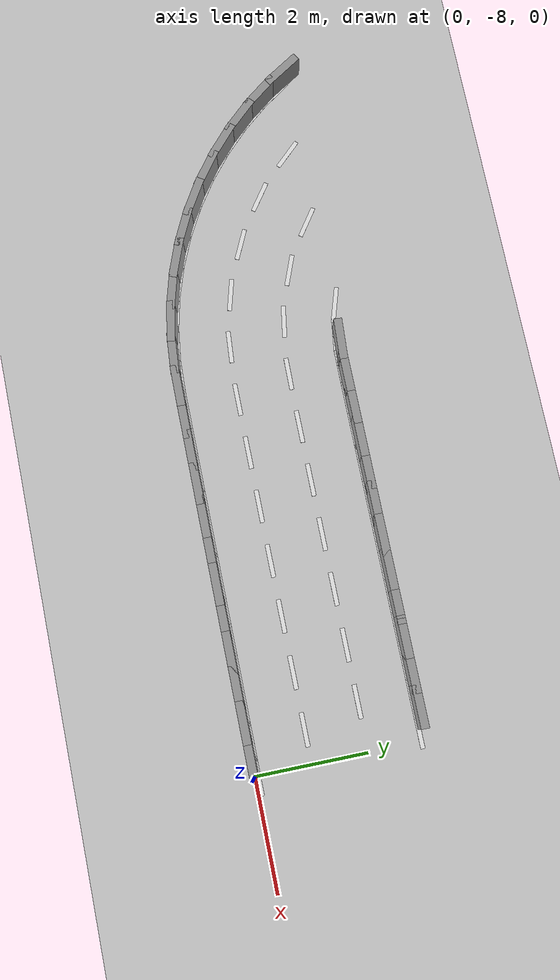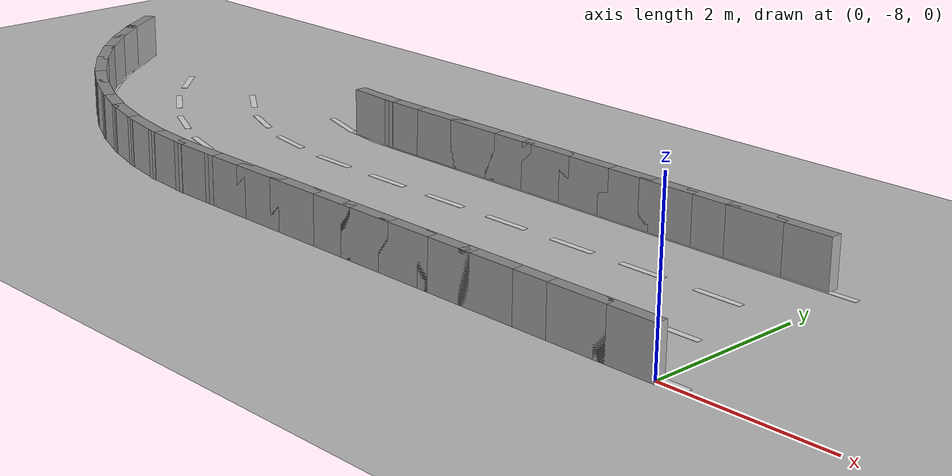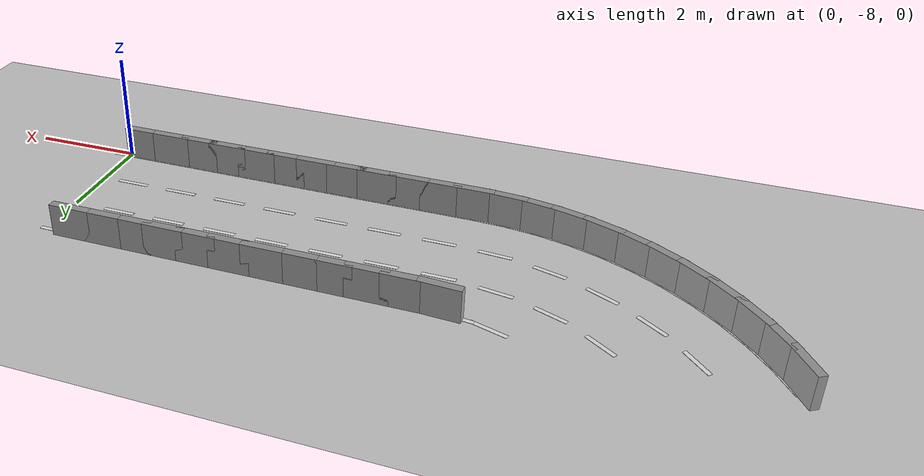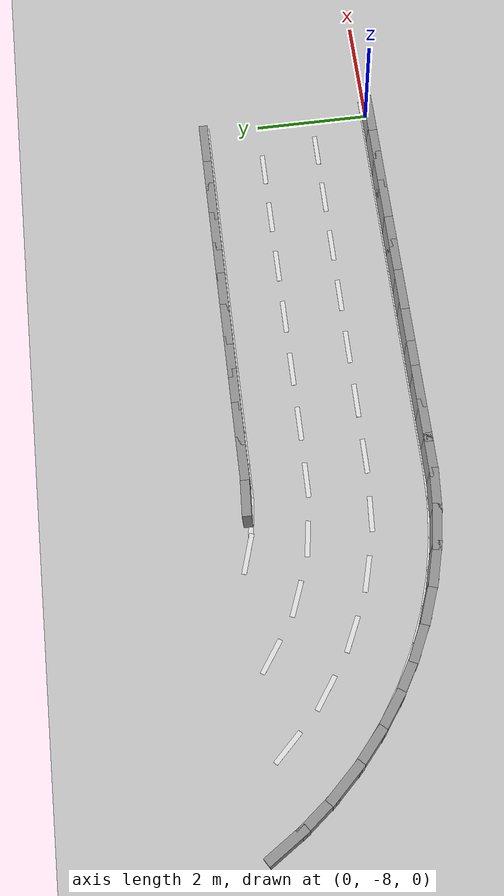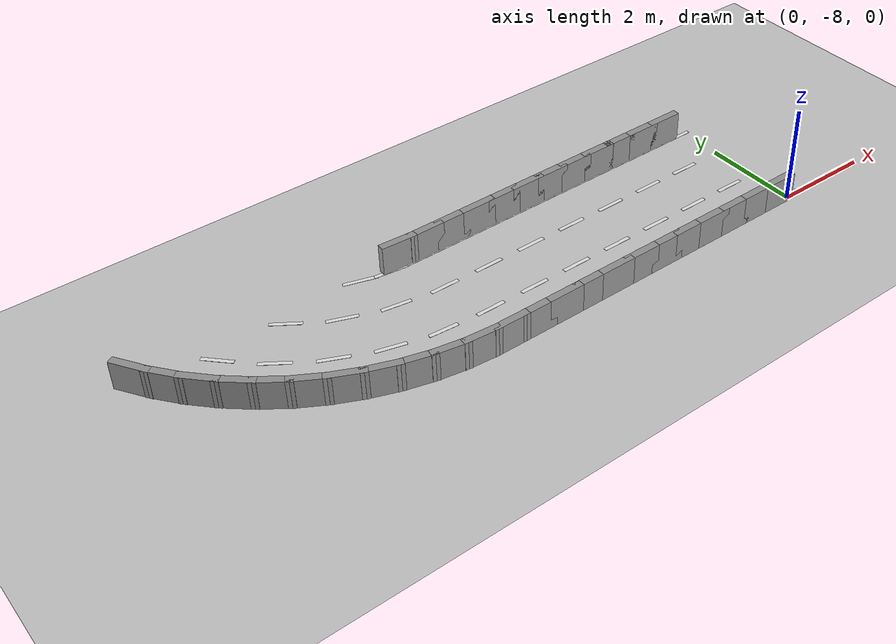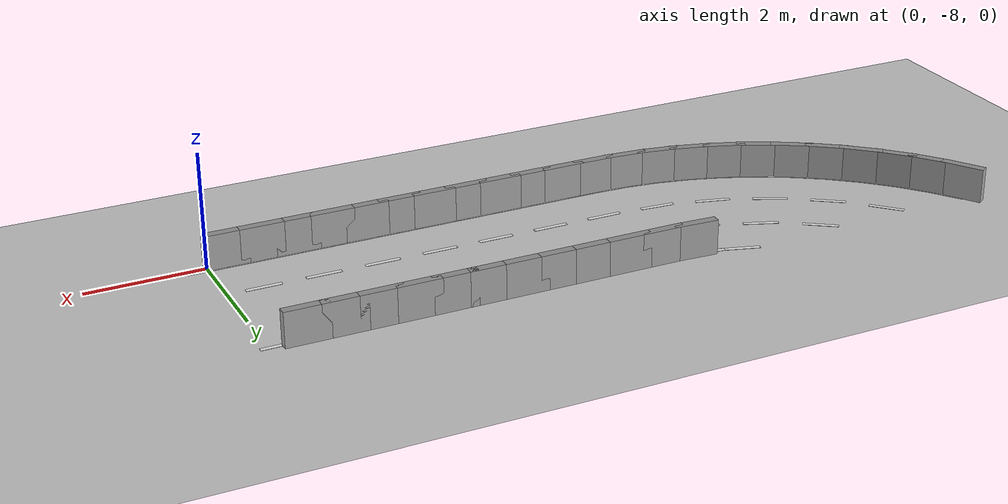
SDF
<sdf version="1.7">
 <world name="default">
  <model name="ground_plane">
   <static>1</static>
   <link name="link">
    <collision name="collision">
     <geometry><plane><normal>0 0 1</normal><size>100 100</size></plane></geometry>
     <surface><friction><ode><mu>100</mu><mu2>50</mu2></ode></friction></surface>
    </collision>
    <visual name="visual">
     <cast_shadows>0</cast_shadows>
     <geometry><plane><normal>0 0 1</normal><size>100 100</size></plane></geometry>
     <material>
      <script><uri>file://media/materials/scripts/gazebo.material</uri><name>Gazebo/Grey</name></script>
     </material>
    </visual>
   </link>
  </model>
  <model name="superspeedway">
   <link name="Wall_55">
    <collision name="Wall_55_Collision">
     <geometry><box><size>0.7494 0.1500 0.6000</size></box></geometry>
     <pose>0 0 0.3000 0 -0 0</pose>
    </collision>
    <visual name="Wall_55_Visual">
     <pose>0 0 0.3000 0 -0 0</pose>
     <geometry><box><size>0.7494 0.1500 0.6000</size></box></geometry>
     <material>
      <script><uri>file://media/materials/scripts/gazebo.material</uri><name>Gazebo/Grey</name></script>
      <ambient>1 1 1 1</ambient>
     </material>
    </visual>
    <pose>-7.1926 -4.9826 0 0 -0 -0.05797</pose>
   </link>
   <link name="Wall_56">
    <collision name="Wall_56_Collision">
     <geometry><box><size>0.7500 0.1500 0.6000</size></box></geometry>
     <pose>0 0 0.3000 0 -0 0</pose>
    </collision>
    <visual name="Wall_56_Visual">
     <pose>0 0 0.3000 0 -0 0</pose>
     <geometry><box><size>0.7500 0.1500 0.6000</size></box></geometry>
     <material>
      <script><uri>file://media/materials/scripts/gazebo.material</uri><name>Gazebo/Grey</name></script>
      <ambient>1 1 1 1</ambient>
     </material>
    </visual>
    <pose>-6.5934 -5.0000 0 0 -0 0.00000</pose>
   </link>
   <link name="Wall_57">
    <collision name="Wall_57_Collision">
     <geometry><box><size>0.7500 0.1500 0.6000</size></box></geometry>
     <pose>0 0 0.3000 0 -0 0</pose>
    </collision>
    <visual name="Wall_57_Visual">
     <pose>0 0 0.3000 0 -0 0</pose>
     <geometry><box><size>0.7500 0.1500 0.6000</size></box></geometry>
     <material>
      <script><uri>file://media/materials/scripts/gazebo.material</uri><name>Gazebo/Grey</name></script>
      <ambient>1 1 1 1</ambient>
     </material>
    </visual>
    <pose>-5.9934 -5.0000 0 0 -0 0.00000</pose>
   </link>
   <link name="Wall_58">
    <collision name="Wall_58_Collision">
     <geometry><box><size>0.7500 0.1500 0.6000</size></box></geometry>
     <pose>0 0 0.3000 0 -0 0</pose>
    </collision>
    <visual name="Wall_58_Visual">
     <pose>0 0 0.3000 0 -0 0</pose>
     <geometry><box><size>0.7500 0.1500 0.6000</size></box></geometry>
     <material>
      <script><uri>file://media/materials/scripts/gazebo.material</uri><name>Gazebo/Grey</name></script>
      <ambient>1 1 1 1</ambient>
     </material>
    </visual>
    <pose>-5.3934 -5.0000 0 0 -0 0.00000</pose>
   </link>
   <link name="Wall_59">
    <collision name="Wall_59_Collision">
     <geometry><box><size>0.7500 0.1500 0.6000</size></box></geometry>
     <pose>0 0 0.3000 0 -0 0</pose>
    </collision>
    <visual name="Wall_59_Visual">
     <pose>0 0 0.3000 0 -0 0</pose>
     <geometry><box><size>0.7500 0.1500 0.6000</size></box></geometry>
     <material>
      <script><uri>file://media/materials/scripts/gazebo.material</uri><name>Gazebo/Grey</name></script>
      <ambient>1 1 1 1</ambient>
     </material>
    </visual>
    <pose>-4.7934 -5.0000 0 0 -0 0.00000</pose>
   </link>
   <link name="Wall_60">
    <collision name="Wall_60_Collision">
     <geometry><box><size>0.7500 0.1500 0.6000</size></box></geometry>
     <pose>0 0 0.3000 0 -0 0</pose>
    </collision>
    <visual name="Wall_60_Visual">
     <pose>0 0 0.3000 0 -0 0</pose>
     <geometry><box><size>0.7500 0.1500 0.6000</size></box></geometry>
     <material>
      <script><uri>file://media/materials/scripts/gazebo.material</uri><name>Gazebo/Grey</name></script>
      <ambient>1 1 1 1</ambient>
     </material>
    </visual>
    <pose>-4.1934 -5.0000 0 0 -0 0.00000</pose>
   </link>
   <link name="Wall_61">
    <collision name="Wall_61_Collision">
     <geometry><box><size>0.7500 0.1500 0.6000</size></box></geometry>
     <pose>0 0 0.3000 0 -0 0</pose>
    </collision>
    <visual name="Wall_61_Visual">
     <pose>0 0 0.3000 0 -0 0</pose>
     <geometry><box><size>0.7500 0.1500 0.6000</size></box></geometry>
     <material>
      <script><uri>file://media/materials/scripts/gazebo.material</uri><name>Gazebo/Grey</name></script>
      <ambient>1 1 1 1</ambient>
     </material>
    </visual>
    <pose>-3.5934 -5.0000 0 0 -0 0.00000</pose>
   </link>
   <link name="Wall_62">
    <collision name="Wall_62_Collision">
     <geometry><box><size>0.7500 0.1500 0.6000</size></box></geometry>
     <pose>0 0 0.3000 0 -0 0</pose>
    </collision>
    <visual name="Wall_62_Visual">
     <pose>0 0 0.3000 0 -0 0</pose>
     <geometry><box><size>0.7500 0.1500 0.6000</size></box></geometry>
     <material>
      <script><uri>file://media/materials/scripts/gazebo.material</uri><name>Gazebo/Grey</name></script>
      <ambient>1 1 1 1</ambient>
     </material>
    </visual>
    <pose>-2.9934 -5.0000 0 0 -0 0.00000</pose>
   </link>
   <link name="Wall_63">
    <collision name="Wall_63_Collision">
     <geometry><box><size>0.7500 0.1500 0.6000</size></box></geometry>
     <pose>0 0 0.3000 0 -0 0</pose>
    </collision>
    <visual name="Wall_63_Visual">
     <pose>0 0 0.3000 0 -0 0</pose>
     <geometry><box><size>0.7500 0.1500 0.6000</size></box></geometry>
     <material>
      <script><uri>file://media/materials/scripts/gazebo.material</uri><name>Gazebo/Grey</name></script>
      <ambient>1 1 1 1</ambient>
     </material>
    </visual>
    <pose>-2.3934 -5.0000 0 0 -0 0.00000</pose>
   </link>
   <link name="Wall_64">
    <collision name="Wall_64_Collision">
     <geometry><box><size>0.7500 0.1500 0.6000</size></box></geometry>
     <pose>0 0 0.3000 0 -0 0</pose>
    </collision>
    <visual name="Wall_64_Visual">
     <pose>0 0 0.3000 0 -0 0</pose>
     <geometry><box><size>0.7500 0.1500 0.6000</size></box></geometry>
     <material>
      <script><uri>file://media/materials/scripts/gazebo.material</uri><name>Gazebo/Grey</name></script>
      <ambient>1 1 1 1</ambient>
     </material>
    </visual>
    <pose>-1.7934 -5.0000 0 0 -0 0.00000</pose>
   </link>
   <link name="Wall_65">
    <collision name="Wall_65_Collision">
     <geometry><box><size>0.7500 0.1500 0.6000</size></box></geometry>
     <pose>0 0 0.3000 0 -0 0</pose>
    </collision>
    <visual name="Wall_65_Visual">
     <pose>0 0 0.3000 0 -0 0</pose>
     <geometry><box><size>0.7500 0.1500 0.6000</size></box></geometry>
     <material>
      <script><uri>file://media/materials/scripts/gazebo.material</uri><name>Gazebo/Grey</name></script>
      <ambient>1 1 1 1</ambient>
     </material>
    </visual>
    <pose>-1.1934 -5.0000 0 0 -0 0.00000</pose>
   </link>
   <link name="Wall_66">
    <collision name="Wall_66_Collision">
     <geometry><box><size>0.7500 0.1500 0.6000</size></box></geometry>
     <pose>0 0 0.3000 0 -0 0</pose>
    </collision>
    <visual name="Wall_66_Visual">
     <pose>0 0 0.3000 0 -0 0</pose>
     <geometry><box><size>0.7500 0.1500 0.6000</size></box></geometry>
     <material>
      <script><uri>file://media/materials/scripts/gazebo.material</uri><name>Gazebo/Grey</name></script>
      <ambient>1 1 1 1</ambient>
     </material>
    </visual>
    <pose>-0.5934 -5.0000 0 0 -0 0.00000</pose>
   </link>
   <link name="Wall_161">
    <collision name="Wall_161_Collision">
     <geometry><box><size>0.7498 0.1500 0.6000</size></box></geometry>
     <pose>0 0 0.3000 0 -0 0</pose>
    </collision>
    <visual name="Wall_161_Visual">
     <pose>0 0 0.3000 0 -0 0</pose>
     <geometry><box><size>0.7498 0.1500 0.6000</size></box></geometry>
     <material>
      <script><uri>file://media/materials/scripts/gazebo.material</uri><name>Gazebo/Grey</name></script>
      <ambient>1 1 1 1</ambient>
     </material>
    </visual>
    <pose>-12.4801 -4.9826 0 0 -0 -1.00471</pose>
   </link>
   <link name="Wall_162">
    <collision name="Wall_162_Collision">
     <geometry><box><size>0.7498 0.1500 0.6000</size></box></geometry>
     <pose>0 0 0.3000 0 -0 0</pose>
    </collision>
    <visual name="Wall_162_Visual">
     <pose>0 0 0.3000 0 -0 0</pose>
     <geometry><box><size>0.7498 0.1500 0.6000</size></box></geometry>
     <material>
      <script><uri>file://media/materials/scripts/gazebo.material</uri><name>Gazebo/Grey</name></script>
      <ambient>1 1 1 1</ambient>
     </material>
    </visual>
    <pose>-12.1358 -5.4729 0 0 -0 -0.91236</pose>
   </link>
   <link name="Wall_163">
    <collision name="Wall_163_Collision">
     <geometry><box><size>0.7498 0.1500 0.6000</size></box></geometry>
     <pose>0 0 0.3000 0 -0 0</pose>
    </collision>
    <visual name="Wall_163_Visual">
     <pose>0 0 0.3000 0 -0 0</pose>
     <geometry><box><size>0.7498 0.1500 0.6000</size></box></geometry>
     <material>
      <script><uri>file://media/materials/scripts/gazebo.material</uri><name>Gazebo/Grey</name></script>
      <ambient>1 1 1 1</ambient>
     </material>
    </visual>
    <pose>-11.7477 -5.9294 0 0 -0 -0.82010</pose>
   </link>
   <link name="Wall_164">
    <collision name="Wall_164_Collision">
     <geometry><box><size>0.7498 0.1500 0.6000</size></box></geometry>
     <pose>0 0 0.3000 0 -0 0</pose>
    </collision>
    <visual name="Wall_164_Visual">
     <pose>0 0 0.3000 0 -0 0</pose>
     <geometry><box><size>0.7498 0.1500 0.6000</size></box></geometry>
     <material>
      <script><uri>file://media/materials/scripts/gazebo.material</uri><name>Gazebo/Grey</name></script>
      <ambient>1 1 1 1</ambient>
     </material>
    </visual>
    <pose>-11.3192 -6.3481 0 0 -0 -0.72774</pose>
   </link>
   <link name="Wall_165">
    <collision name="Wall_165_Collision">
     <geometry><box><size>0.7498 0.1500 0.6000</size></box></geometry>
     <pose>0 0 0.3000 0 -0 0</pose>
    </collision>
    <visual name="Wall_165_Visual">
     <pose>0 0 0.3000 0 -0 0</pose>
     <geometry><box><size>0.7498 0.1500 0.6000</size></box></geometry>
     <material>
      <script><uri>file://media/materials/scripts/gazebo.material</uri><name>Gazebo/Grey</name></script>
      <ambient>1 1 1 1</ambient>
     </material>
    </visual>
    <pose>-10.8539 -6.7256 0 0 -0 -0.63548</pose>
   </link>
   <link name="Wall_166">
    <collision name="Wall_166_Collision">
     <geometry><box><size>0.7498 0.1500 0.6000</size></box></geometry>
     <pose>0 0 0.3000 0 -0 0</pose>
    </collision>
    <visual name="Wall_166_Visual">
     <pose>0 0 0.3000 0 -0 0</pose>
     <geometry><box><size>0.7498 0.1500 0.6000</size></box></geometry>
     <material>
      <script><uri>file://media/materials/scripts/gazebo.material</uri><name>Gazebo/Grey</name></script>
      <ambient>1 1 1 1</ambient>
     </material>
    </visual>
    <pose>-10.3559 -7.0586 0 0 -0 -0.54313</pose>
   </link>
   <link name="Wall_167">
    <collision name="Wall_167_Collision">
     <geometry><box><size>0.7498 0.1500 0.6000</size></box></geometry>
     <pose>0 0 0.3000 0 -0 0</pose>
    </collision>
    <visual name="Wall_167_Visual">
     <pose>0 0 0.3000 0 -0 0</pose>
     <geometry><box><size>0.7498 0.1500 0.6000</size></box></geometry>
     <material>
      <script><uri>file://media/materials/scripts/gazebo.material</uri><name>Gazebo/Grey</name></script>
      <ambient>1 1 1 1</ambient>
     </material>
    </visual>
    <pose>-9.8292 -7.3443 0 0 -0 -0.45086</pose>
   </link>
   <link name="Wall_168">
    <collision name="Wall_168_Collision">
     <geometry><box><size>0.7498 0.1500 0.6000</size></box></geometry>
     <pose>0 0 0.3000 0 -0 0</pose>
    </collision>
    <visual name="Wall_168_Visual">
     <pose>0 0 0.3000 0 -0 0</pose>
     <geometry><box><size>0.7498 0.1500 0.6000</size></box></geometry>
     <material>
      <script><uri>file://media/materials/scripts/gazebo.material</uri><name>Gazebo/Grey</name></script>
      <ambient>1 1 1 1</ambient>
     </material>
    </visual>
    <pose>-9.2784 -7.5802 0 0 -0 -0.35852</pose>
   </link>
   <link name="Wall_169">
    <collision name="Wall_169_Collision">
     <geometry><box><size>0.7498 0.1500 0.6000</size></box></geometry>
     <pose>0 0 0.3000 0 -0 0</pose>
    </collision>
    <visual name="Wall_169_Visual">
     <pose>0 0 0.3000 0 -0 0</pose>
     <geometry><box><size>0.7498 0.1500 0.6000</size></box></geometry>
     <material>
      <script><uri>file://media/materials/scripts/gazebo.material</uri><name>Gazebo/Grey</name></script>
      <ambient>1 1 1 1</ambient>
     </material>
    </visual>
    <pose>-8.7083 -7.7643 0 0 -0 -0.26624</pose>
   </link>
   <link name="Wall_170">
    <collision name="Wall_170_Collision">
     <geometry><box><size>0.7498 0.1500 0.6000</size></box></geometry>
     <pose>0 0 0.3000 0 -0 0</pose>
    </collision>
    <visual name="Wall_170_Visual">
     <pose>0 0 0.3000 0 -0 0</pose>
     <geometry><box><size>0.7498 0.1500 0.6000</size></box></geometry>
     <material>
      <script><uri>file://media/materials/scripts/gazebo.material</uri><name>Gazebo/Grey</name></script>
      <ambient>1 1 1 1</ambient>
     </material>
    </visual>
    <pose>-8.1236 -7.8951 0 0 -0 -0.17390</pose>
   </link>
   <link name="Wall_171">
    <collision name="Wall_171_Collision">
     <geometry><box><size>0.7498 0.1500 0.6000</size></box></geometry>
     <pose>0 0 0.3000 0 -0 0</pose>
    </collision>
    <visual name="Wall_171_Visual">
     <pose>0 0 0.3000 0 -0 0</pose>
     <geometry><box><size>0.7498 0.1500 0.6000</size></box></geometry>
     <material>
      <script><uri>file://media/materials/scripts/gazebo.material</uri><name>Gazebo/Grey</name></script>
      <ambient>1 1 1 1</ambient>
     </material>
    </visual>
    <pose>-7.5293 -7.9715 0 0 -0 -0.08163</pose>
   </link>
   <link name="Wall_172">
    <collision name="Wall_172_Collision">
     <geometry><box><size>0.7500 0.1500 0.6000</size></box></geometry>
     <pose>0 0 0.3000 0 -0 0</pose>
    </collision>
    <visual name="Wall_172_Visual">
     <pose>0 0 0.3000 0 -0 0</pose>
     <geometry><box><size>0.7500 0.1500 0.6000</size></box></geometry>
     <material>
      <script><uri>file://media/materials/scripts/gazebo.material</uri><name>Gazebo/Grey</name></script>
      <ambient>1 1 1 1</ambient>
     </material>
    </visual>
    <pose>-6.9305 -7.9980 0 0 -0 -0.00682</pose>
   </link>
   <link name="Wall_173">
    <collision name="Wall_173_Collision">
     <geometry><box><size>0.7500 0.1500 0.6000</size></box></geometry>
     <pose>0 0 0.3000 0 -0 0</pose>
    </collision>
    <visual name="Wall_173_Visual">
     <pose>0 0 0.3000 0 -0 0</pose>
     <geometry><box><size>0.7500 0.1500 0.6000</size></box></geometry>
     <material>
      <script><uri>file://media/materials/scripts/gazebo.material</uri><name>Gazebo/Grey</name></script>
      <ambient>1 1 1 1</ambient>
     </material>
    </visual>
    <pose>-6.3305 -8.0000 0 0 -0 0.00000</pose>
   </link>
   <link name="Wall_174">
    <collision name="Wall_174_Collision">
     <geometry><box><size>0.7500 0.1500 0.6000</size></box></geometry>
     <pose>0 0 0.3000 0 -0 0</pose>
    </collision>
    <visual name="Wall_174_Visual">
     <pose>0 0 0.3000 0 -0 0</pose>
     <geometry><box><size>0.7500 0.1500 0.6000</size></box></geometry>
     <material>
      <script><uri>file://media/materials/scripts/gazebo.material</uri><name>Gazebo/Grey</name></script>
      <ambient>1 1 1 1</ambient>
     </material>
    </visual>
    <pose>-5.7305 -8.0000 0 0 -0 0.00000</pose>
   </link>
   <link name="Wall_175">
    <collision name="Wall_175_Collision">
     <geometry><box><size>0.7500 0.1500 0.6000</size></box></geometry>
     <pose>0 0 0.3000 0 -0 0</pose>
    </collision>
    <visual name="Wall_175_Visual">
     <pose>0 0 0.3000 0 -0 0</pose>
     <geometry><box><size>0.7500 0.1500 0.6000</size></box></geometry>
     <material>
      <script><uri>file://media/materials/scripts/gazebo.material</uri><name>Gazebo/Grey</name></script>
      <ambient>1 1 1 1</ambient>
     </material>
    </visual>
    <pose>-5.1305 -8.0000 0 0 -0 0.00000</pose>
   </link>
   <link name="Wall_176">
    <collision name="Wall_176_Collision">
     <geometry><box><size>0.7500 0.1500 0.6000</size></box></geometry>
     <pose>0 0 0.3000 0 -0 0</pose>
    </collision>
    <visual name="Wall_176_Visual">
     <pose>0 0 0.3000 0 -0 0</pose>
     <geometry><box><size>0.7500 0.1500 0.6000</size></box></geometry>
     <material>
      <script><uri>file://media/materials/scripts/gazebo.material</uri><name>Gazebo/Grey</name></script>
      <ambient>1 1 1 1</ambient>
     </material>
    </visual>
    <pose>-4.5305 -8.0000 0 0 -0 0.00000</pose>
   </link>
   <link name="Wall_177">
    <collision name="Wall_177_Collision">
     <geometry><box><size>0.7500 0.1500 0.6000</size></box></geometry>
     <pose>0 0 0.3000 0 -0 0</pose>
    </collision>
    <visual name="Wall_177_Visual">
     <pose>0 0 0.3000 0 -0 0</pose>
     <geometry><box><size>0.7500 0.1500 0.6000</size></box></geometry>
     <material>
      <script><uri>file://media/materials/scripts/gazebo.material</uri><name>Gazebo/Grey</name></script>
      <ambient>1 1 1 1</ambient>
     </material>
    </visual>
    <pose>-3.9305 -8.0000 0 0 -0 0.00000</pose>
   </link>
   <link name="Wall_178">
    <collision name="Wall_178_Collision">
     <geometry><box><size>0.7500 0.1500 0.6000</size></box></geometry>
     <pose>0 0 0.3000 0 -0 0</pose>
    </collision>
    <visual name="Wall_178_Visual">
     <pose>0 0 0.3000 0 -0 0</pose>
     <geometry><box><size>0.7500 0.1500 0.6000</size></box></geometry>
     <material>
      <script><uri>file://media/materials/scripts/gazebo.material</uri><name>Gazebo/Grey</name></script>
      <ambient>1 1 1 1</ambient>
     </material>
    </visual>
    <pose>-3.3305 -8.0000 0 0 -0 0.00000</pose>
   </link>
   <link name="Wall_179">
    <collision name="Wall_179_Collision">
     <geometry><box><size>0.7500 0.1500 0.6000</size></box></geometry>
     <pose>0 0 0.3000 0 -0 0</pose>
    </collision>
    <visual name="Wall_179_Visual">
     <pose>0 0 0.3000 0 -0 0</pose>
     <geometry><box><size>0.7500 0.1500 0.6000</size></box></geometry>
     <material>
      <script><uri>file://media/materials/scripts/gazebo.material</uri><name>Gazebo/Grey</name></script>
      <ambient>1 1 1 1</ambient>
     </material>
    </visual>
    <pose>-2.7305 -8.0000 0 0 -0 0.00000</pose>
   </link>
   <link name="Wall_180">
    <collision name="Wall_180_Collision">
     <geometry><box><size>0.7500 0.1500 0.6000</size></box></geometry>
     <pose>0 0 0.3000 0 -0 0</pose>
    </collision>
    <visual name="Wall_180_Visual">
     <pose>0 0 0.3000 0 -0 0</pose>
     <geometry><box><size>0.7500 0.1500 0.6000</size></box></geometry>
     <material>
      <script><uri>file://media/materials/scripts/gazebo.material</uri><name>Gazebo/Grey</name></script>
      <ambient>1 1 1 1</ambient>
     </material>
    </visual>
    <pose>-2.1305 -8.0000 0 0 -0 0.00000</pose>
   </link>
   <link name="Wall_181">
    <collision name="Wall_181_Collision">
     <geometry><box><size>0.7500 0.1500 0.6000</size></box></geometry>
     <pose>0 0 0.3000 0 -0 0</pose>
    </collision>
    <visual name="Wall_181_Visual">
     <pose>0 0 0.3000 0 -0 0</pose>
     <geometry><box><size>0.7500 0.1500 0.6000</size></box></geometry>
     <material>
      <script><uri>file://media/materials/scripts/gazebo.material</uri><name>Gazebo/Grey</name></script>
      <ambient>1 1 1 1</ambient>
     </material>
    </visual>
    <pose>-1.5305 -8.0000 0 0 -0 0.00000</pose>
   </link>
   <link name="Wall_182">
    <collision name="Wall_182_Collision">
     <geometry><box><size>0.7500 0.1500 0.6000</size></box></geometry>
     <pose>0 0 0.3000 0 -0 0</pose>
    </collision>
    <visual name="Wall_182_Visual">
     <pose>0 0 0.3000 0 -0 0</pose>
     <geometry><box><size>0.7500 0.1500 0.6000</size></box></geometry>
     <material>
      <script><uri>file://media/materials/scripts/gazebo.material</uri><name>Gazebo/Grey</name></script>
      <ambient>1 1 1 1</ambient>
     </material>
    </visual>
    <pose>-0.9305 -8.0000 0 0 -0 0.00000</pose>
   </link>
   <link name="Wall_183">
    <collision name="Wall_183_Collision">
     <geometry><box><size>0.7500 0.1500 0.6000</size></box></geometry>
     <pose>0 0 0.3000 0 -0 0</pose>
    </collision>
    <visual name="Wall_183_Visual">
     <pose>0 0 0.3000 0 -0 0</pose>
     <geometry><box><size>0.7500 0.1500 0.6000</size></box></geometry>
     <material>
      <script><uri>file://media/materials/scripts/gazebo.material</uri><name>Gazebo/Grey</name></script>
      <ambient>1 1 1 1</ambient>
     </material>
    </visual>
    <pose>-0.3305 -8.0000 0 0 -0 0.00000</pose>
   </link>
   <link name="Paint_54">
    <visual name="Paint_54_Visual">
     <pose>0 0 0.0020 0 -0 0</pose>
     <geometry><box><size>0.6797 0.0800 0.0040</size></box></geometry>
     <material>
      <script><uri>file://media/materials/scripts/gazebo.material</uri><name>Gazebo/White</name></script>
      <ambient>1 1 1 1</ambient>
     </material>
    </visual>
    <pose>-8.0000 -4.9021 0 0 -0 -0.29706</pose>
   </link>
   <link name="Paint_55">
    <visual name="Paint_55_Visual">
     <pose>0 0 0.0020 0 -0 0</pose>
     <geometry><box><size>0.6799 0.0800 0.0040</size></box></geometry>
     <material>
      <script><uri>file://media/materials/scripts/gazebo.material</uri><name>Gazebo/White</name></script>
      <ambient>1 1 1 1</ambient>
     </material>
    </visual>
    <pose>-7.4145 -5.0222 0 0 -0 -0.12969</pose>
   </link>
   <link name="Paint_56">
    <visual name="Paint_56_Visual">
     <pose>0 0 0.0020 0 -0 0</pose>
     <geometry><box><size>0.6800 0.0800 0.0040</size></box></geometry>
     <material>
      <script><uri>file://media/materials/scripts/gazebo.material</uri><name>Gazebo/White</name></script>
      <ambient>1 1 1 1</ambient>
     </material>
    </visual>
    <pose>-6.8167 -5.0582 0 0 -0 -0.00703</pose>
   </link>
   <link name="Paint_57">
    <visual name="Paint_57_Visual">
     <pose>0 0 0.0020 0 -0 0</pose>
     <geometry><box><size>0.6800 0.0800 0.0040</size></box></geometry>
     <material>
      <script><uri>file://media/materials/scripts/gazebo.material</uri><name>Gazebo/White</name></script>
      <ambient>1 1 1 1</ambient>
     </material>
    </visual>
    <pose>-6.2167 -5.0600 0 0 -0 0.00000</pose>
   </link>
   <link name="Paint_58">
    <visual name="Paint_58_Visual">
     <pose>0 0 0.0020 0 -0 0</pose>
     <geometry><box><size>0.6800 0.0800 0.0040</size></box></geometry>
     <material>
      <script><uri>file://media/materials/scripts/gazebo.material</uri><name>Gazebo/White</name></script>
      <ambient>1 1 1 1</ambient>
     </material>
    </visual>
    <pose>-5.6167 -5.0600 0 0 -0 0.00000</pose>
   </link>
   <link name="Paint_59">
    <visual name="Paint_59_Visual">
     <pose>0 0 0.0020 0 -0 0</pose>
     <geometry><box><size>0.6800 0.0800 0.0040</size></box></geometry>
     <material>
      <script><uri>file://media/materials/scripts/gazebo.material</uri><name>Gazebo/White</name></script>
      <ambient>1 1 1 1</ambient>
     </material>
    </visual>
    <pose>-5.0167 -5.0600 0 0 -0 0.00000</pose>
   </link>
   <link name="Paint_60">
    <visual name="Paint_60_Visual">
     <pose>0 0 0.0020 0 -0 0</pose>
     <geometry><box><size>0.6800 0.0800 0.0040</size></box></geometry>
     <material>
      <script><uri>file://media/materials/scripts/gazebo.material</uri><name>Gazebo/White</name></script>
      <ambient>1 1 1 1</ambient>
     </material>
    </visual>
    <pose>-4.4167 -5.0600 0 0 -0 0.00000</pose>
   </link>
   <link name="Paint_61">
    <visual name="Paint_61_Visual">
     <pose>0 0 0.0020 0 -0 0</pose>
     <geometry><box><size>0.6800 0.0800 0.0040</size></box></geometry>
     <material>
      <script><uri>file://media/materials/scripts/gazebo.material</uri><name>Gazebo/White</name></script>
      <ambient>1 1 1 1</ambient>
     </material>
    </visual>
    <pose>-3.8167 -5.0600 0 0 -0 0.00000</pose>
   </link>
   <link name="Paint_62">
    <visual name="Paint_62_Visual">
     <pose>0 0 0.0020 0 -0 0</pose>
     <geometry><box><size>0.6800 0.0800 0.0040</size></box></geometry>
     <material>
      <script><uri>file://media/materials/scripts/gazebo.material</uri><name>Gazebo/White</name></script>
      <ambient>1 1 1 1</ambient>
     </material>
    </visual>
    <pose>-3.2167 -5.0600 0 0 -0 0.00000</pose>
   </link>
   <link name="Paint_63">
    <visual name="Paint_63_Visual">
     <pose>0 0 0.0020 0 -0 0</pose>
     <geometry><box><size>0.6800 0.0800 0.0040</size></box></geometry>
     <material>
      <script><uri>file://media/materials/scripts/gazebo.material</uri><name>Gazebo/White</name></script>
      <ambient>1 1 1 1</ambient>
     </material>
    </visual>
    <pose>-2.6167 -5.0600 0 0 -0 0.00000</pose>
   </link>
   <link name="Paint_64">
    <visual name="Paint_64_Visual">
     <pose>0 0 0.0020 0 -0 0</pose>
     <geometry><box><size>0.6800 0.0800 0.0040</size></box></geometry>
     <material>
      <script><uri>file://media/materials/scripts/gazebo.material</uri><name>Gazebo/White</name></script>
      <ambient>1 1 1 1</ambient>
     </material>
    </visual>
    <pose>-2.0167 -5.0600 0 0 -0 0.00000</pose>
   </link>
   <link name="Paint_65">
    <visual name="Paint_65_Visual">
     <pose>0 0 0.0020 0 -0 0</pose>
     <geometry><box><size>0.6800 0.0800 0.0040</size></box></geometry>
     <material>
      <script><uri>file://media/materials/scripts/gazebo.material</uri><name>Gazebo/White</name></script>
      <ambient>1 1 1 1</ambient>
     </material>
    </visual>
    <pose>-1.4167 -5.0600 0 0 -0 0.00000</pose>
   </link>
   <link name="Paint_66">
    <visual name="Paint_66_Visual">
     <pose>0 0 0.0020 0 -0 0</pose>
     <geometry><box><size>0.6800 0.0800 0.0040</size></box></geometry>
     <material>
      <script><uri>file://media/materials/scripts/gazebo.material</uri><name>Gazebo/White</name></script>
      <ambient>1 1 1 1</ambient>
     </material>
    </visual>
    <pose>-0.8167 -5.0600 0 0 -0 0.00000</pose>
   </link>
   <link name="Paint_67">
    <visual name="Paint_67_Visual">
     <pose>0 0 0.0020 0 -0 0</pose>
     <geometry><box><size>0.6800 0.0800 0.0040</size></box></geometry>
     <material>
      <script><uri>file://media/materials/scripts/gazebo.material</uri><name>Gazebo/White</name></script>
      <ambient>1 1 1 1</ambient>
     </material>
    </visual>
    <pose>-0.2167 -5.0600 0 0 -0 0.00000</pose>
   </link>
   <link name="Paint_162">
    <visual name="Paint_162_Visual">
     <pose>0 0 0.0020 0 -0 0</pose>
     <geometry><box><size>0.6800 0.0800 0.0040</size></box></geometry>
     <material>
      <script><uri>file://media/materials/scripts/gazebo.material</uri><name>Gazebo/White</name></script>
      <ambient>1 1 1 1</ambient>
     </material>
    </visual>
    <pose>-12.2791 -5.1757 0 0 -0 -0.96877</pose>
   </link>
   <link name="Paint_163">
    <visual name="Paint_163_Visual">
     <pose>0 0 0.0020 0 -0 0</pose>
     <geometry><box><size>0.6800 0.0800 0.0040</size></box></geometry>
     <material>
      <script><uri>file://media/materials/scripts/gazebo.material</uri><name>Gazebo/White</name></script>
      <ambient>1 1 1 1</ambient>
     </material>
    </visual>
    <pose>-11.9141 -5.6511 0 0 -0 -0.87556</pose>
   </link>
   <link name="Paint_164">
    <visual name="Paint_164_Visual">
     <pose>0 0 0.0020 0 -0 0</pose>
     <geometry><box><size>0.6800 0.0800 0.0040</size></box></geometry>
     <material>
      <script><uri>file://media/materials/scripts/gazebo.material</uri><name>Gazebo/White</name></script>
      <ambient>1 1 1 1</ambient>
     </material>
    </visual>
    <pose>-11.5064 -6.0904 0 0 -0 -0.78238</pose>
   </link>
   <link name="Paint_165">
    <visual name="Paint_165_Visual">
     <pose>0 0 0.0020 0 -0 0</pose>
     <geometry><box><size>0.6800 0.0800 0.0040</size></box></geometry>
     <material>
      <script><uri>file://media/materials/scripts/gazebo.material</uri><name>Gazebo/White</name></script>
      <ambient>1 1 1 1</ambient>
     </material>
    </visual>
    <pose>-11.0597 -6.4899 0 0 -0 -0.68918</pose>
   </link>
   <link name="Paint_166">
    <visual name="Paint_166_Visual">
     <pose>0 0 0.0020 0 -0 0</pose>
     <geometry><box><size>0.6800 0.0800 0.0040</size></box></geometry>
     <material>
      <script><uri>file://media/materials/scripts/gazebo.material</uri><name>Gazebo/White</name></script>
      <ambient>1 1 1 1</ambient>
     </material>
    </visual>
    <pose>-10.5776 -6.8460 0 0 -0 -0.59595</pose>
   </link>
   <link name="Paint_167">
    <visual name="Paint_167_Visual">
     <pose>0 0 0.0020 0 -0 0</pose>
     <geometry><box><size>0.6800 0.0800 0.0040</size></box></geometry>
     <material>
      <script><uri>file://media/materials/scripts/gazebo.material</uri><name>Gazebo/White</name></script>
      <ambient>1 1 1 1</ambient>
     </material>
    </visual>
    <pose>-10.0646 -7.1558 0 0 -0 -0.50277</pose>
   </link>
   <link name="Paint_168">
    <visual name="Paint_168_Visual">
     <pose>0 0 0.0020 0 -0 0</pose>
     <geometry><box><size>0.6800 0.0800 0.0040</size></box></geometry>
     <material>
      <script><uri>file://media/materials/scripts/gazebo.material</uri><name>Gazebo/White</name></script>
      <ambient>1 1 1 1</ambient>
     </material>
    </visual>
    <pose>-9.5249 -7.4164 0 0 -0 -0.40959</pose>
   </link>
   <link name="Paint_169">
    <visual name="Paint_169_Visual">
     <pose>0 0 0.0020 0 -0 0</pose>
     <geometry><box><size>0.6800 0.0800 0.0040</size></box></geometry>
     <material>
      <script><uri>file://media/materials/scripts/gazebo.material</uri><name>Gazebo/White</name></script>
      <ambient>1 1 1 1</ambient>
     </material>
    </visual>
    <pose>-8.9633 -7.6257 0 0 -0 -0.31634</pose>
   </link>
   <link name="Paint_170">
    <visual name="Paint_170_Visual">
     <pose>0 0 0.0020 0 -0 0</pose>
     <geometry><box><size>0.6800 0.0800 0.0040</size></box></geometry>
     <material>
      <script><uri>file://media/materials/scripts/gazebo.material</uri><name>Gazebo/White</name></script>
      <ambient>1 1 1 1</ambient>
     </material>
    </visual>
    <pose>-8.3847 -7.7818 0 0 -0 -0.22316</pose>
   </link>
   <link name="Paint_171">
    <visual name="Paint_171_Visual">
     <pose>0 0 0.0020 0 -0 0</pose>
     <geometry><box><size>0.6800 0.0800 0.0040</size></box></geometry>
     <material>
      <script><uri>file://media/materials/scripts/gazebo.material</uri><name>Gazebo/White</name></script>
      <ambient>1 1 1 1</ambient>
     </material>
    </visual>
    <pose>-7.7941 -7.8834 0 0 -0 -0.12998</pose>
   </link>
   <link name="Paint_172">
    <visual name="Paint_172_Visual">
     <pose>0 0 0.0020 0 -0 0</pose>
     <geometry><box><size>0.6800 0.0800 0.0040</size></box></geometry>
     <material>
      <script><uri>file://media/materials/scripts/gazebo.material</uri><name>Gazebo/White</name></script>
      <ambient>1 1 1 1</ambient>
     </material>
    </visual>
    <pose>-7.1965 -7.9301 0 0 -0 -0.03812</pose>
   </link>
   <link name="Paint_173">
    <visual name="Paint_173_Visual">
     <pose>0 0 0.0020 0 -0 0</pose>
     <geometry><box><size>0.6800 0.0800 0.0040</size></box></geometry>
     <material>
      <script><uri>file://media/materials/scripts/gazebo.material</uri><name>Gazebo/White</name></script>
      <ambient>1 1 1 1</ambient>
     </material>
    </visual>
    <pose>-6.5967 -7.9400 0 0 -0 0.00000</pose>
   </link>
   <link name="Paint_174">
    <visual name="Paint_174_Visual">
     <pose>0 0 0.0020 0 -0 0</pose>
     <geometry><box><size>0.6800 0.0800 0.0040</size></box></geometry>
     <material>
      <script><uri>file://media/materials/scripts/gazebo.material</uri><name>Gazebo/White</name></script>
      <ambient>1 1 1 1</ambient>
     </material>
    </visual>
    <pose>-5.9967 -7.9400 0 0 -0 0.00000</pose>
   </link>
   <link name="Paint_175">
    <visual name="Paint_175_Visual">
     <pose>0 0 0.0020 0 -0 0</pose>
     <geometry><box><size>0.6800 0.0800 0.0040</size></box></geometry>
     <material>
      <script><uri>file://media/materials/scripts/gazebo.material</uri><name>Gazebo/White</name></script>
      <ambient>1 1 1 1</ambient>
     </material>
    </visual>
    <pose>-5.3967 -7.9400 0 0 -0 0.00000</pose>
   </link>
   <link name="Paint_176">
    <visual name="Paint_176_Visual">
     <pose>0 0 0.0020 0 -0 0</pose>
     <geometry><box><size>0.6800 0.0800 0.0040</size></box></geometry>
     <material>
      <script><uri>file://media/materials/scripts/gazebo.material</uri><name>Gazebo/White</name></script>
      <ambient>1 1 1 1</ambient>
     </material>
    </visual>
    <pose>-4.7967 -7.9400 0 0 -0 0.00000</pose>
   </link>
   <link name="Paint_177">
    <visual name="Paint_177_Visual">
     <pose>0 0 0.0020 0 -0 0</pose>
     <geometry><box><size>0.6800 0.0800 0.0040</size></box></geometry>
     <material>
      <script><uri>file://media/materials/scripts/gazebo.material</uri><name>Gazebo/White</name></script>
      <ambient>1 1 1 1</ambient>
     </material>
    </visual>
    <pose>-4.1967 -7.9400 0 0 -0 0.00000</pose>
   </link>
   <link name="Paint_178">
    <visual name="Paint_178_Visual">
     <pose>0 0 0.0020 0 -0 0</pose>
     <geometry><box><size>0.6800 0.0800 0.0040</size></box></geometry>
     <material>
      <script><uri>file://media/materials/scripts/gazebo.material</uri><name>Gazebo/White</name></script>
      <ambient>1 1 1 1</ambient>
     </material>
    </visual>
    <pose>-3.5967 -7.9400 0 0 -0 0.00000</pose>
   </link>
   <link name="Paint_179">
    <visual name="Paint_179_Visual">
     <pose>0 0 0.0020 0 -0 0</pose>
     <geometry><box><size>0.6800 0.0800 0.0040</size></box></geometry>
     <material>
      <script><uri>file://media/materials/scripts/gazebo.material</uri><name>Gazebo/White</name></script>
      <ambient>1 1 1 1</ambient>
     </material>
    </visual>
    <pose>-2.9967 -7.9400 0 0 -0 0.00000</pose>
   </link>
   <link name="Paint_180">
    <visual name="Paint_180_Visual">
     <pose>0 0 0.0020 0 -0 0</pose>
     <geometry><box><size>0.6800 0.0800 0.0040</size></box></geometry>
     <material>
      <script><uri>file://media/materials/scripts/gazebo.material</uri><name>Gazebo/White</name></script>
      <ambient>1 1 1 1</ambient>
     </material>
    </visual>
    <pose>-2.3967 -7.9400 0 0 -0 0.00000</pose>
   </link>
   <link name="Paint_181">
    <visual name="Paint_181_Visual">
     <pose>0 0 0.0020 0 -0 0</pose>
     <geometry><box><size>0.6800 0.0800 0.0040</size></box></geometry>
     <material>
      <script><uri>file://media/materials/scripts/gazebo.material</uri><name>Gazebo/White</name></script>
      <ambient>1 1 1 1</ambient>
     </material>
    </visual>
    <pose>-1.7967 -7.9400 0 0 -0 0.00000</pose>
   </link>
   <link name="Paint_182">
    <visual name="Paint_182_Visual">
     <pose>0 0 0.0020 0 -0 0</pose>
     <geometry><box><size>0.6800 0.0800 0.0040</size></box></geometry>
     <material>
      <script><uri>file://media/materials/scripts/gazebo.material</uri><name>Gazebo/White</name></script>
      <ambient>1 1 1 1</ambient>
     </material>
    </visual>
    <pose>-1.1967 -7.9400 0 0 -0 0.00000</pose>
   </link>
   <link name="Paint_183">
    <visual name="Paint_183_Visual">
     <pose>0 0 0.0020 0 -0 0</pose>
     <geometry><box><size>0.6800 0.0800 0.0040</size></box></geometry>
     <material>
      <script><uri>file://media/materials/scripts/gazebo.material</uri><name>Gazebo/White</name></script>
      <ambient>1 1 1 1</ambient>
     </material>
    </visual>
    <pose>-0.5967 -7.9400 0 0 -0 0.00000</pose>
   </link>
   <link name="Paint_184">
    <visual name="Paint_184_Visual">
     <pose>0 0 0.0020 0 -0 0</pose>
     <geometry><box><size>0.6800 0.0800 0.0040</size></box></geometry>
     <material>
      <script><uri>file://media/materials/scripts/gazebo.material</uri><name>Gazebo/White</name></script>
      <ambient>1 1 1 1</ambient>
     </material>
    </visual>
    <pose>0.0033 -7.9400 0 0 -0 0.00000</pose>
   </link>
   <link name="Paint_254">
    <visual name="Paint_254_Visual">
     <pose>0 0 0.0020 0 -0 0</pose>
     <geometry><box><size>0.6000 0.0800 0.0040</size></box></geometry>
     <material>
      <script><uri>file://media/materials/scripts/gazebo.material</uri><name>Gazebo/White</name></script>
      <ambient>1 1 1 1</ambient>
     </material>
    </visual>
    <pose>-9.6789 -5.0783 0 0 -0 -0.60646</pose>
   </link>
   <link name="Paint_255">
    <visual name="Paint_255_Visual">
     <pose>0 0 0.0020 0 -0 0</pose>
     <geometry><box><size>0.6000 0.0800 0.0040</size></box></geometry>
     <material>
      <script><uri>file://media/materials/scripts/gazebo.material</uri><name>Gazebo/White</name></script>
      <ambient>1 1 1 1</ambient>
     </material>
    </visual>
    <pose>-8.8257 -5.5839 0 0 -0 -0.36824</pose>
   </link>
   <link name="Paint_256">
    <visual name="Paint_256_Visual">
     <pose>0 0 0.0020 0 -0 0</pose>
     <geometry><box><size>0.6000 0.0800 0.0040</size></box></geometry>
     <material>
      <script><uri>file://media/materials/scripts/gazebo.material</uri><name>Gazebo/White</name></script>
      <ambient>1 1 1 1</ambient>
     </material>
    </visual>
    <pose>-7.8782 -5.8812 0 0 -0 -0.15428</pose>
   </link>
   <link name="Paint_257">
    <visual name="Paint_257_Visual">
     <pose>0 0 0.0020 0 -0 0</pose>
     <geometry><box><size>0.6000 0.0800 0.0040</size></box></geometry>
     <material>
      <script><uri>file://media/materials/scripts/gazebo.material</uri><name>Gazebo/White</name></script>
      <ambient>1 1 1 1</ambient>
     </material>
    </visual>
    <pose>-6.8899 -5.9918 0 0 -0 -0.01172</pose>
   </link>
   <link name="Paint_258">
    <visual name="Paint_258_Visual">
     <pose>0 0 0.0020 0 -0 0</pose>
     <geometry><box><size>0.6000 0.0800 0.0040</size></box></geometry>
     <material>
      <script><uri>file://media/materials/scripts/gazebo.material</uri><name>Gazebo/White</name></script>
      <ambient>1 1 1 1</ambient>
     </material>
    </visual>
    <pose>-5.8900 -6.0000 0 0 -0 0.00000</pose>
   </link>
   <link name="Paint_259">
    <visual name="Paint_259_Visual">
     <pose>0 0 0.0020 0 -0 0</pose>
     <geometry><box><size>0.6000 0.0800 0.0040</size></box></geometry>
     <material>
      <script><uri>file://media/materials/scripts/gazebo.material</uri><name>Gazebo/White</name></script>
      <ambient>1 1 1 1</ambient>
     </material>
    </visual>
    <pose>-4.8900 -6.0000 0 0 -0 0.00000</pose>
   </link>
   <link name="Paint_260">
    <visual name="Paint_260_Visual">
     <pose>0 0 0.0020 0 -0 0</pose>
     <geometry><box><size>0.6000 0.0800 0.0040</size></box></geometry>
     <material>
      <script><uri>file://media/materials/scripts/gazebo.material</uri><name>Gazebo/White</name></script>
      <ambient>1 1 1 1</ambient>
     </material>
    </visual>
    <pose>-3.8900 -6.0000 0 0 -0 0.00000</pose>
   </link>
   <link name="Paint_261">
    <visual name="Paint_261_Visual">
     <pose>0 0 0.0020 0 -0 0</pose>
     <geometry><box><size>0.6000 0.0800 0.0040</size></box></geometry>
     <material>
      <script><uri>file://media/materials/scripts/gazebo.material</uri><name>Gazebo/White</name></script>
      <ambient>1 1 1 1</ambient>
     </material>
    </visual>
    <pose>-2.8900 -6.0000 0 0 -0 0.00000</pose>
   </link>
   <link name="Paint_262">
    <visual name="Paint_262_Visual">
     <pose>0 0 0.0020 0 -0 0</pose>
     <geometry><box><size>0.6000 0.0800 0.0040</size></box></geometry>
     <material>
      <script><uri>file://media/materials/scripts/gazebo.material</uri><name>Gazebo/White</name></script>
      <ambient>1 1 1 1</ambient>
     </material>
    </visual>
    <pose>-1.8900 -6.0000 0 0 -0 0.00000</pose>
   </link>
   <link name="Paint_263">
    <visual name="Paint_263_Visual">
     <pose>0 0 0.0020 0 -0 0</pose>
     <geometry><box><size>0.6000 0.0800 0.0040</size></box></geometry>
     <material>
      <script><uri>file://media/materials/scripts/gazebo.material</uri><name>Gazebo/White</name></script>
      <ambient>1 1 1 1</ambient>
     </material>
    </visual>
    <pose>-0.8900 -6.0000 0 0 -0 0.00000</pose>
   </link>
   <link name="Paint_320">
    <visual name="Paint_320_Visual">
     <pose>0 0 0.0020 0 -0 0</pose>
     <geometry><box><size>0.6000 0.0800 0.0040</size></box></geometry>
     <material>
      <script><uri>file://media/materials/scripts/gazebo.material</uri><name>Gazebo/White</name></script>
      <ambient>1 1 1 1</ambient>
     </material>
    </visual>
    <pose>-11.0690 -5.1640 0 0 -0 -0.80824</pose>
   </link>
   <link name="Paint_321">
    <visual name="Paint_321_Visual">
     <pose>0 0 0.0020 0 -0 0</pose>
     <geometry><box><size>0.6000 0.0800 0.0040</size></box></geometry>
     <material>
      <script><uri>file://media/materials/scripts/gazebo.material</uri><name>Gazebo/White</name></script>
      <ambient>1 1 1 1</ambient>
     </material>
    </visual>
    <pose>-10.3411 -5.8416 0 0 -0 -0.61301</pose>
   </link>
   <link name="Paint_322">
    <visual name="Paint_322_Visual">
     <pose>0 0 0.0020 0 -0 0</pose>
     <geometry><box><size>0.6000 0.0800 0.0040</size></box></geometry>
     <material>
      <script><uri>file://media/materials/scripts/gazebo.material</uri><name>Gazebo/White</name></script>
      <ambient>1 1 1 1</ambient>
     </material>
    </visual>
    <pose>-9.4980 -6.3705 0 0 -0 -0.43714</pose>
   </link>
   <link name="Paint_323">
    <visual name="Paint_323_Visual">
     <pose>0 0 0.0020 0 -0 0</pose>
     <geometry><box><size>0.6000 0.0800 0.0040</size></box></geometry>
     <material>
      <script><uri>file://media/materials/scripts/gazebo.material</uri><name>Gazebo/White</name></script>
      <ambient>1 1 1 1</ambient>
     </material>
    </visual>
    <pose>-8.5762 -6.7437 0 0 -0 -0.26247</pose>
   </link>
   <link name="Paint_324">
    <visual name="Paint_324_Visual">
     <pose>0 0 0.0020 0 -0 0</pose>
     <geometry><box><size>0.6000 0.0800 0.0040</size></box></geometry>
     <material>
      <script><uri>file://media/materials/scripts/gazebo.material</uri><name>Gazebo/White</name></script>
      <ambient>1 1 1 1</ambient>
     </material>
    </visual>
    <pose>-7.6024 -6.9466 0 0 -0 -0.07235</pose>
   </link>
   <link name="Paint_325">
    <visual name="Paint_325_Visual">
     <pose>0 0 0.0020 0 -0 0</pose>
     <geometry><box><size>0.6000 0.0800 0.0040</size></box></geometry>
     <material>
      <script><uri>file://media/materials/scripts/gazebo.material</uri><name>Gazebo/White</name></script>
      <ambient>1 1 1 1</ambient>
     </material>
    </visual>
    <pose>-6.6054 -6.9980 0 0 -0 -0.00287</pose>
   </link>
   <link name="Paint_326">
    <visual name="Paint_326_Visual">
     <pose>0 0 0.0020 0 -0 0</pose>
     <geometry><box><size>0.6000 0.0800 0.0040</size></box></geometry>
     <material>
      <script><uri>file://media/materials/scripts/gazebo.material</uri><name>Gazebo/White</name></script>
      <ambient>1 1 1 1</ambient>
     </material>
    </visual>
    <pose>-5.6054 -7.0000 0 0 -0 0.00000</pose>
   </link>
   <link name="Paint_327">
    <visual name="Paint_327_Visual">
     <pose>0 0 0.0020 0 -0 0</pose>
     <geometry><box><size>0.6000 0.0800 0.0040</size></box></geometry>
     <material>
      <script><uri>file://media/materials/scripts/gazebo.material</uri><name>Gazebo/White</name></script>
      <ambient>1 1 1 1</ambient>
     </material>
    </visual>
    <pose>-4.6054 -7.0000 0 0 -0 0.00000</pose>
   </link>
   <link name="Paint_328">
    <visual name="Paint_328_Visual">
     <pose>0 0 0.0020 0 -0 0</pose>
     <geometry><box><size>0.6000 0.0800 0.0040</size></box></geometry>
     <material>
      <script><uri>file://media/materials/scripts/gazebo.material</uri><name>Gazebo/White</name></script>
      <ambient>1 1 1 1</ambient>
     </material>
    </visual>
    <pose>-3.6054 -7.0000 0 0 -0 0.00000</pose>
   </link>
   <link name="Paint_329">
    <visual name="Paint_329_Visual">
     <pose>0 0 0.0020 0 -0 0</pose>
     <geometry><box><size>0.6000 0.0800 0.0040</size></box></geometry>
     <material>
      <script><uri>file://media/materials/scripts/gazebo.material</uri><name>Gazebo/White</name></script>
      <ambient>1 1 1 1</ambient>
     </material>
    </visual>
    <pose>-2.6054 -7.0000 0 0 -0 0.00000</pose>
   </link>
   <link name="Paint_330">
    <visual name="Paint_330_Visual">
     <pose>0 0 0.0020 0 -0 0</pose>
     <geometry><box><size>0.6000 0.0800 0.0040</size></box></geometry>
     <material>
      <script><uri>file://media/materials/scripts/gazebo.material</uri><name>Gazebo/White</name></script>
      <ambient>1 1 1 1</ambient>
     </material>
    </visual>
    <pose>-1.6054 -7.0000 0 0 -0 0.00000</pose>
   </link>
   <link name="Paint_331">
    <visual name="Paint_331_Visual">
     <pose>0 0 0.0020 0 -0 0</pose>
     <geometry><box><size>0.6000 0.0800 0.0040</size></box></geometry>
     <material>
      <script><uri>file://media/materials/scripts/gazebo.material</uri><name>Gazebo/White</name></script>
      <ambient>1 1 1 1</ambient>
     </material>
    </visual>
    <pose>-0.6054 -7.0000 0 0 -0 0.00000</pose>
   </link>
   <static>1</static>
  </model>
 </world>
</sdf>
